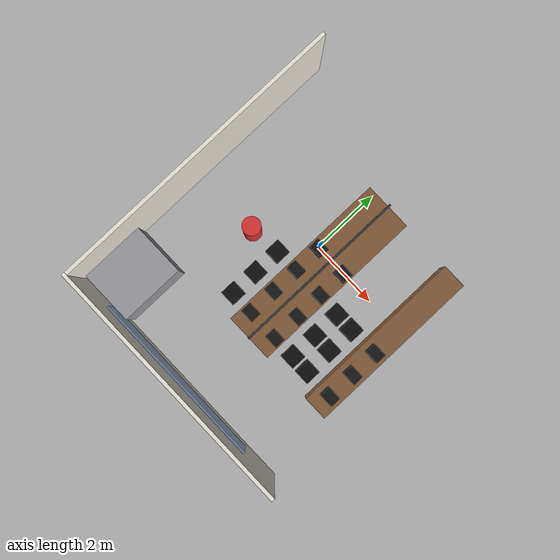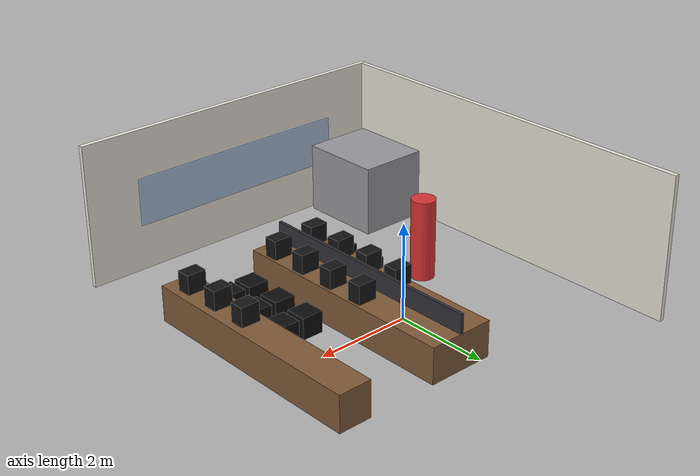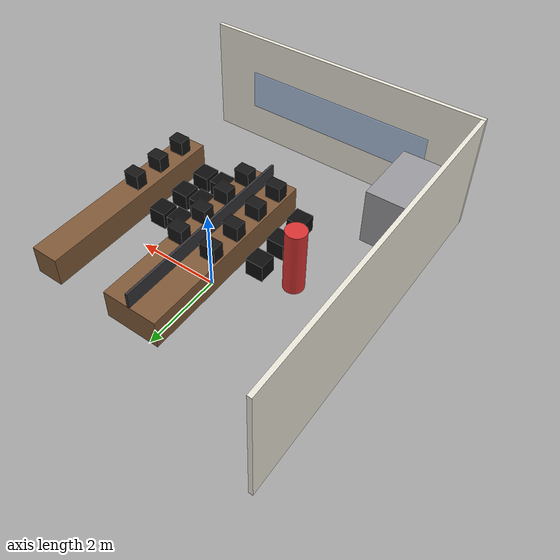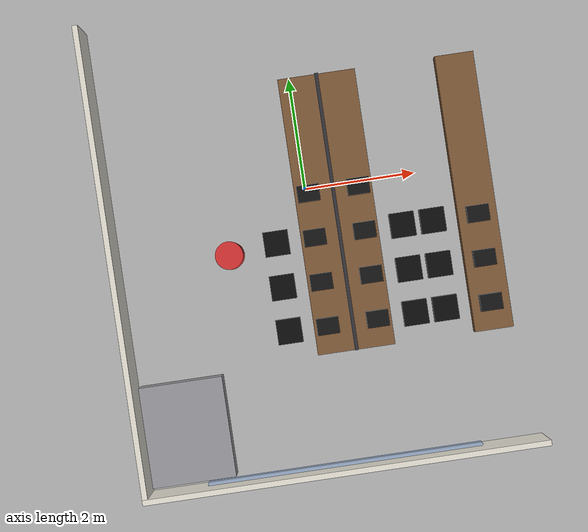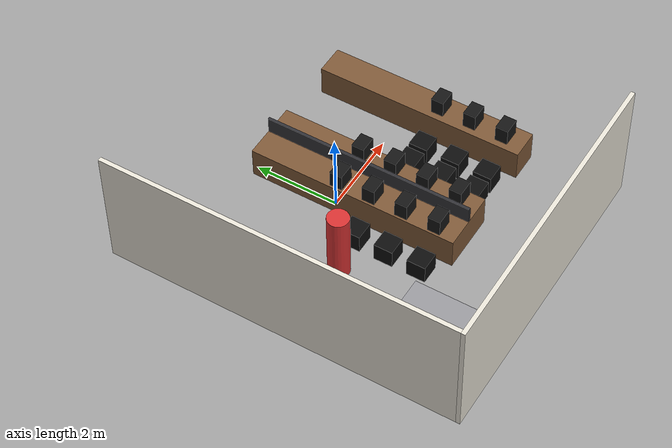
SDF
<sdf version="1.9">
 <world name="cs_classroom">
  <model name="wall_south">
   <static>true</static>
   <pose>0 -5.05 1.5 0 0 0</pose>
   <link name="link">
    <collision name="collision"><geometry><box><size>7.2 0.1 3.0</size></box></geometry></collision>
    <visual name="visual">
     <geometry><box><size>7.2 0.1 3.0</size></box></geometry>
     <material>
      <ambient>0.92 0.9 0.85 1.0</ambient>
      <diffuse>0.92 0.9 0.85 1.0</diffuse>
      <specular>0.3 0.3 0.3 1.0</specular>
     </material>
    </visual>
   </link>
  </model>
  <model name="wall_west_lower">
   <static>true</static>
   <pose>-3.55 -0.8250000000000002 1.5 0 0 0</pose>
   <link name="link">
    <collision name="collision"><geometry><box><size>0.1 8.35 3.0</size></box></geometry></collision>
    <visual name="visual">
     <geometry><box><size>0.1 8.35 3.0</size></box></geometry>
     <material>
      <ambient>0.92 0.9 0.85 1.0</ambient>
      <diffuse>0.92 0.9 0.85 1.0</diffuse>
      <specular>0.3 0.3 0.3 1.0</specular>
     </material>
    </visual>
   </link>
  </model>
  <model name="window_south">
   <static>true</static>
   <pose>0 -4.95 1.5 0 0 0</pose>
   <link name="link">
    <visual name="visual">
     <geometry><box><size>4.8999999999999995 0.04 1.0</size></box></geometry>
     <material>
      <ambient>0.45 0.65 0.95 0.45</ambient>
      <diffuse>0.45 0.65 0.95 0.45</diffuse>
      <specular>0.3 0.3 0.3 0.45</specular>
     </material>
    </visual>
   </link>
  </model>
  <model name="storage_cabinet">
   <static>true</static>
   <pose>-2.7 -4.0 0.75 0 0 0</pose>
   <link name="link">
    <collision name="collision"><geometry><box><size>1.5 1.8 1.5</size></box></geometry></collision>
    <visual name="visual">
     <geometry><box><size>1.5 1.8 1.5</size></box></geometry>
     <material>
      <ambient>0.6 0.6 0.62 1.0</ambient>
      <diffuse>0.6 0.6 0.62 1.0</diffuse>
      <specular>0.3 0.3 0.3 1.0</specular>
     </material>
    </visual>
   </link>
  </model>
  <model name="table_T1T2">
   <static>true</static>
   <pose>0.5 -0.5 0.375 0 0 0</pose>
   <link name="link">
    <collision name="collision"><geometry><box><size>1.4 5.0 0.75</size></box></geometry></collision>
    <visual name="visual">
     <geometry><box><size>1.4 5.0 0.75</size></box></geometry>
     <material>
      <ambient>0.5 0.35 0.22 1.0</ambient>
      <diffuse>0.5 0.35 0.22 1.0</diffuse>
      <specular>0.3 0.3 0.3 1.0</specular>
     </material>
    </visual>
   </link>
  </model>
  <model name="cable_tray_T1T2">
   <static>true</static>
   <pose>0.5 -0.5 0.95 0 0 0</pose>
   <link name="link">
    <collision name="collision"><geometry><box><size>0.06 5.0 0.4</size></box></geometry></collision>
    <visual name="visual">
     <geometry><box><size>0.06 5.0 0.4</size></box></geometry>
     <material>
      <ambient>0.2 0.2 0.22 1.0</ambient>
      <diffuse>0.2 0.2 0.22 1.0</diffuse>
      <specular>0.3 0.3 0.3 1.0</specular>
     </material>
    </visual>
   </link>
  </model>
  <model name="ws_T1_1">
   <static>true</static>
   <pose>0.050000000000000044 -2.5 0.95 0 0 0</pose>
   <link name="link">
    <collision name="collision"><geometry><box><size>0.4 0.3 0.4</size></box></geometry></collision>
    <visual name="visual">
     <geometry><box><size>0.4 0.3 0.4</size></box></geometry>
     <material>
      <ambient>0.08 0.08 0.08 1.0</ambient>
      <diffuse>0.08 0.08 0.08 1.0</diffuse>
      <specular>0.3 0.3 0.3 1.0</specular>
     </material>
    </visual>
   </link>
  </model>
  <model name="ws_T2_1">
   <static>true</static>
   <pose>0.95 -2.5 0.95 0 0 0</pose>
   <link name="link">
    <collision name="collision"><geometry><box><size>0.4 0.3 0.4</size></box></geometry></collision>
    <visual name="visual">
     <geometry><box><size>0.4 0.3 0.4</size></box></geometry>
     <material>
      <ambient>0.08 0.08 0.08 1.0</ambient>
      <diffuse>0.08 0.08 0.08 1.0</diffuse>
      <specular>0.3 0.3 0.3 1.0</specular>
     </material>
    </visual>
   </link>
  </model>
  <model name="chair_T1_1">
   <static>true</static>
   <pose>-0.6499999999999999 -2.5 0.225 0 0 0</pose>
   <link name="link">
    <collision name="collision"><geometry><box><size>0.45 0.45 0.45</size></box></geometry></collision>
    <visual name="visual">
     <geometry><box><size>0.45 0.45 0.45</size></box></geometry>
     <material>
      <ambient>0.05 0.05 0.05 1.0</ambient>
      <diffuse>0.05 0.05 0.05 1.0</diffuse>
      <specular>0.3 0.3 0.3 1.0</specular>
     </material>
    </visual>
   </link>
  </model>
  <model name="chair_T2_1">
   <static>true</static>
   <pose>1.65 -2.5 0.225 0 0 0</pose>
   <link name="link">
    <collision name="collision"><geometry><box><size>0.45 0.45 0.45</size></box></geometry></collision>
    <visual name="visual">
     <geometry><box><size>0.45 0.45 0.45</size></box></geometry>
     <material>
      <ambient>0.05 0.05 0.05 1.0</ambient>
      <diffuse>0.05 0.05 0.05 1.0</diffuse>
      <specular>0.3 0.3 0.3 1.0</specular>
     </material>
    </visual>
   </link>
  </model>
  <model name="ws_T1_2">
   <static>true</static>
   <pose>0.050000000000000044 -1.7 0.95 0 0 0</pose>
   <link name="link">
    <collision name="collision"><geometry><box><size>0.4 0.3 0.4</size></box></geometry></collision>
    <visual name="visual">
     <geometry><box><size>0.4 0.3 0.4</size></box></geometry>
     <material>
      <ambient>0.08 0.08 0.08 1.0</ambient>
      <diffuse>0.08 0.08 0.08 1.0</diffuse>
      <specular>0.3 0.3 0.3 1.0</specular>
     </material>
    </visual>
   </link>
  </model>
  <model name="ws_T2_2">
   <static>true</static>
   <pose>0.95 -1.7 0.95 0 0 0</pose>
   <link name="link">
    <collision name="collision"><geometry><box><size>0.4 0.3 0.4</size></box></geometry></collision>
    <visual name="visual">
     <geometry><box><size>0.4 0.3 0.4</size></box></geometry>
     <material>
      <ambient>0.08 0.08 0.08 1.0</ambient>
      <diffuse>0.08 0.08 0.08 1.0</diffuse>
      <specular>0.3 0.3 0.3 1.0</specular>
     </material>
    </visual>
   </link>
  </model>
  <model name="chair_T1_2">
   <static>true</static>
   <pose>-0.6499999999999999 -1.7 0.225 0 0 0</pose>
   <link name="link">
    <collision name="collision"><geometry><box><size>0.45 0.45 0.45</size></box></geometry></collision>
    <visual name="visual">
     <geometry><box><size>0.45 0.45 0.45</size></box></geometry>
     <material>
      <ambient>0.05 0.05 0.05 1.0</ambient>
      <diffuse>0.05 0.05 0.05 1.0</diffuse>
      <specular>0.3 0.3 0.3 1.0</specular>
     </material>
    </visual>
   </link>
  </model>
  <model name="chair_T2_2">
   <static>true</static>
   <pose>1.65 -1.7 0.225 0 0 0</pose>
   <link name="link">
    <collision name="collision"><geometry><box><size>0.45 0.45 0.45</size></box></geometry></collision>
    <visual name="visual">
     <geometry><box><size>0.45 0.45 0.45</size></box></geometry>
     <material>
      <ambient>0.05 0.05 0.05 1.0</ambient>
      <diffuse>0.05 0.05 0.05 1.0</diffuse>
      <specular>0.3 0.3 0.3 1.0</specular>
     </material>
    </visual>
   </link>
  </model>
  <model name="ws_T1_3">
   <static>true</static>
   <pose>0.050000000000000044 -0.8999999999999999 0.95 0 0 0</pose>
   <link name="link">
    <collision name="collision"><geometry><box><size>0.4 0.3 0.4</size></box></geometry></collision>
    <visual name="visual">
     <geometry><box><size>0.4 0.3 0.4</size></box></geometry>
     <material>
      <ambient>0.08 0.08 0.08 1.0</ambient>
      <diffuse>0.08 0.08 0.08 1.0</diffuse>
      <specular>0.3 0.3 0.3 1.0</specular>
     </material>
    </visual>
   </link>
  </model>
  <model name="ws_T2_3">
   <static>true</static>
   <pose>0.95 -0.8999999999999999 0.95 0 0 0</pose>
   <link name="link">
    <collision name="collision"><geometry><box><size>0.4 0.3 0.4</size></box></geometry></collision>
    <visual name="visual">
     <geometry><box><size>0.4 0.3 0.4</size></box></geometry>
     <material>
      <ambient>0.08 0.08 0.08 1.0</ambient>
      <diffuse>0.08 0.08 0.08 1.0</diffuse>
      <specular>0.3 0.3 0.3 1.0</specular>
     </material>
    </visual>
   </link>
  </model>
  <model name="chair_T1_3">
   <static>true</static>
   <pose>-0.6499999999999999 -0.8999999999999999 0.225 0 0 0</pose>
   <link name="link">
    <collision name="collision"><geometry><box><size>0.45 0.45 0.45</size></box></geometry></collision>
    <visual name="visual">
     <geometry><box><size>0.45 0.45 0.45</size></box></geometry>
     <material>
      <ambient>0.05 0.05 0.05 1.0</ambient>
      <diffuse>0.05 0.05 0.05 1.0</diffuse>
      <specular>0.3 0.3 0.3 1.0</specular>
     </material>
    </visual>
   </link>
  </model>
  <model name="chair_T2_3">
   <static>true</static>
   <pose>1.65 -0.8999999999999999 0.225 0 0 0</pose>
   <link name="link">
    <collision name="collision"><geometry><box><size>0.45 0.45 0.45</size></box></geometry></collision>
    <visual name="visual">
     <geometry><box><size>0.45 0.45 0.45</size></box></geometry>
     <material>
      <ambient>0.05 0.05 0.05 1.0</ambient>
      <diffuse>0.05 0.05 0.05 1.0</diffuse>
      <specular>0.3 0.3 0.3 1.0</specular>
     </material>
    </visual>
   </link>
  </model>
  <model name="ws_T1_4">
   <static>true</static>
   <pose>0.050000000000000044 -0.09999999999999964 0.95 0 0 0</pose>
   <link name="link">
    <collision name="collision"><geometry><box><size>0.4 0.3 0.4</size></box></geometry></collision>
    <visual name="visual">
     <geometry><box><size>0.4 0.3 0.4</size></box></geometry>
     <material>
      <ambient>0.08 0.08 0.08 1.0</ambient>
      <diffuse>0.08 0.08 0.08 1.0</diffuse>
      <specular>0.3 0.3 0.3 1.0</specular>
     </material>
    </visual>
   </link>
  </model>
  <model name="ws_T2_4">
   <static>true</static>
   <pose>0.95 -0.09999999999999964 0.95 0 0 0</pose>
   <link name="link">
    <collision name="collision"><geometry><box><size>0.4 0.3 0.4</size></box></geometry></collision>
    <visual name="visual">
     <geometry><box><size>0.4 0.3 0.4</size></box></geometry>
     <material>
      <ambient>0.08 0.08 0.08 1.0</ambient>
      <diffuse>0.08 0.08 0.08 1.0</diffuse>
      <specular>0.3 0.3 0.3 1.0</specular>
     </material>
    </visual>
   </link>
  </model>
  <model name="table_T3">
   <static>true</static>
   <pose>3.0 -0.5 0.375 0 0 0</pose>
   <link name="link">
    <collision name="collision"><geometry><box><size>0.7 5.0 0.75</size></box></geometry></collision>
    <visual name="visual">
     <geometry><box><size>0.7 5.0 0.75</size></box></geometry>
     <material>
      <ambient>0.5 0.35 0.22 1.0</ambient>
      <diffuse>0.5 0.35 0.22 1.0</diffuse>
      <specular>0.3 0.3 0.3 1.0</specular>
     </material>
    </visual>
   </link>
  </model>
  <model name="ws_T3_1">
   <static>true</static>
   <pose>3.0 -2.5 0.95 0 0 0</pose>
   <link name="link">
    <collision name="collision"><geometry><box><size>0.4 0.3 0.4</size></box></geometry></collision>
    <visual name="visual">
     <geometry><box><size>0.4 0.3 0.4</size></box></geometry>
     <material>
      <ambient>0.08 0.08 0.08 1.0</ambient>
      <diffuse>0.08 0.08 0.08 1.0</diffuse>
      <specular>0.3 0.3 0.3 1.0</specular>
     </material>
    </visual>
   </link>
  </model>
  <model name="chair_T3_1">
   <static>true</static>
   <pose>2.1999999999999997 -2.5 0.225 0 0 0</pose>
   <link name="link">
    <collision name="collision"><geometry><box><size>0.45 0.45 0.45</size></box></geometry></collision>
    <visual name="visual">
     <geometry><box><size>0.45 0.45 0.45</size></box></geometry>
     <material>
      <ambient>0.05 0.05 0.05 1.0</ambient>
      <diffuse>0.05 0.05 0.05 1.0</diffuse>
      <specular>0.3 0.3 0.3 1.0</specular>
     </material>
    </visual>
   </link>
  </model>
  <model name="ws_T3_2">
   <static>true</static>
   <pose>3.0 -1.7 0.95 0 0 0</pose>
   <link name="link">
    <collision name="collision"><geometry><box><size>0.4 0.3 0.4</size></box></geometry></collision>
    <visual name="visual">
     <geometry><box><size>0.4 0.3 0.4</size></box></geometry>
     <material>
      <ambient>0.08 0.08 0.08 1.0</ambient>
      <diffuse>0.08 0.08 0.08 1.0</diffuse>
      <specular>0.3 0.3 0.3 1.0</specular>
     </material>
    </visual>
   </link>
  </model>
  <model name="chair_T3_2">
   <static>true</static>
   <pose>2.1999999999999997 -1.7 0.225 0 0 0</pose>
   <link name="link">
    <collision name="collision"><geometry><box><size>0.45 0.45 0.45</size></box></geometry></collision>
    <visual name="visual">
     <geometry><box><size>0.45 0.45 0.45</size></box></geometry>
     <material>
      <ambient>0.05 0.05 0.05 1.0</ambient>
      <diffuse>0.05 0.05 0.05 1.0</diffuse>
      <specular>0.3 0.3 0.3 1.0</specular>
     </material>
    </visual>
   </link>
  </model>
  <model name="ws_T3_3">
   <static>true</static>
   <pose>3.0 -0.8999999999999999 0.95 0 0 0</pose>
   <link name="link">
    <collision name="collision"><geometry><box><size>0.4 0.3 0.4</size></box></geometry></collision>
    <visual name="visual">
     <geometry><box><size>0.4 0.3 0.4</size></box></geometry>
     <material>
      <ambient>0.08 0.08 0.08 1.0</ambient>
      <diffuse>0.08 0.08 0.08 1.0</diffuse>
      <specular>0.3 0.3 0.3 1.0</specular>
     </material>
    </visual>
   </link>
  </model>
  <model name="chair_T3_3">
   <static>true</static>
   <pose>2.1999999999999997 -0.8999999999999999 0.225 0 0 0</pose>
   <link name="link">
    <collision name="collision"><geometry><box><size>0.45 0.45 0.45</size></box></geometry></collision>
    <visual name="visual">
     <geometry><box><size>0.45 0.45 0.45</size></box></geometry>
     <material>
      <ambient>0.05 0.05 0.05 1.0</ambient>
      <diffuse>0.05 0.05 0.05 1.0</diffuse>
      <specular>0.3 0.3 0.3 1.0</specular>
     </material>
    </visual>
   </link>
  </model>
  <model name="demo_person">
   <static>true</static>
   <pose>-1.5 -1.0 0.85 0 0 0</pose>
   <link name="link">
    <collision name="collision">
     <geometry><cylinder><radius>0.25</radius><length>1.7</length></cylinder></geometry>
    </collision>
    <visual name="visual">
     <geometry><cylinder><radius>0.25</radius><length>1.7</length></cylinder></geometry>
     <material>
      <ambient>0.85 0.2 0.2 1.0</ambient>
      <diffuse>0.85 0.2 0.2 1.0</diffuse>
      <specular>0.3 0.3 0.3 1.0</specular>
     </material>
    </visual>
   </link>
  </model>
 </world>
</sdf>
